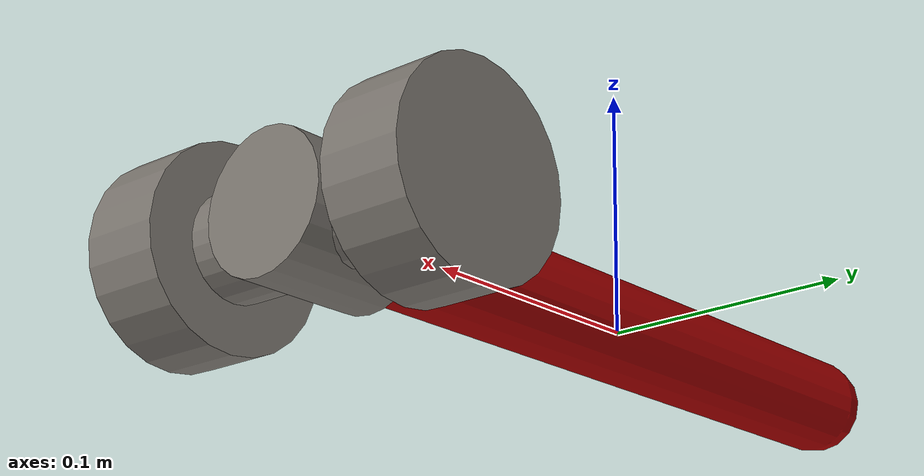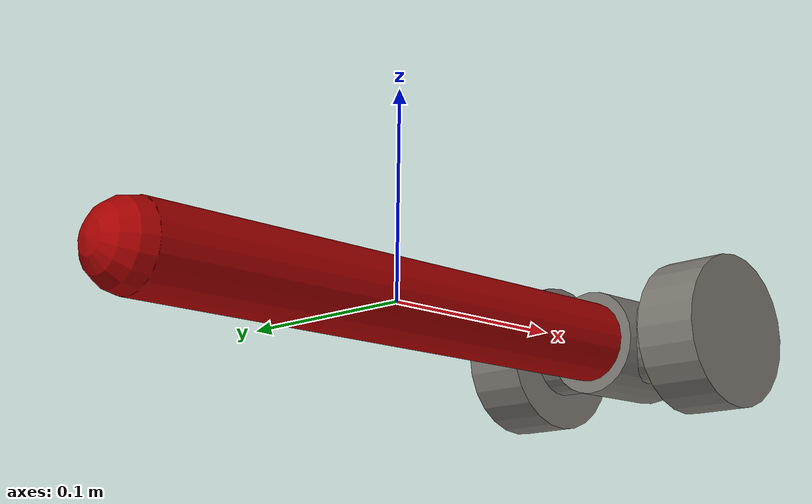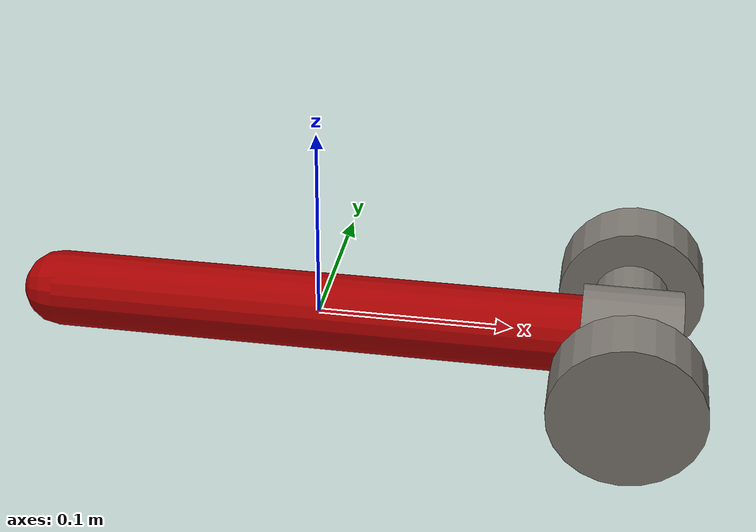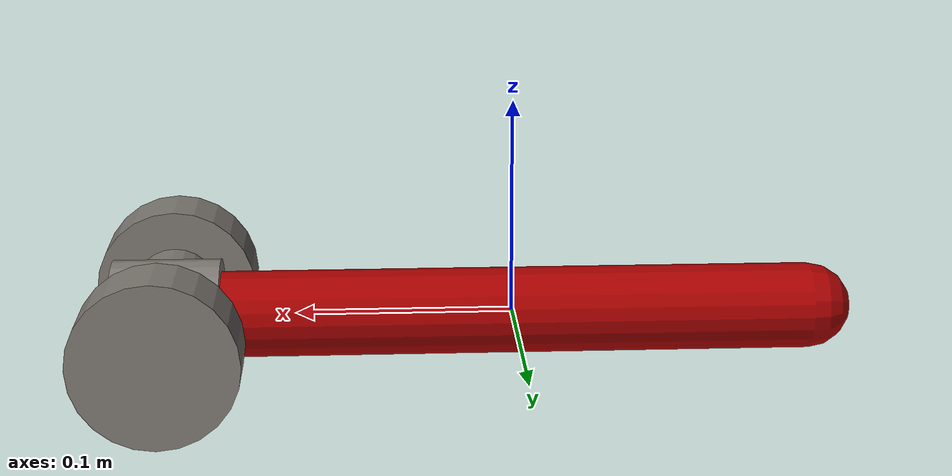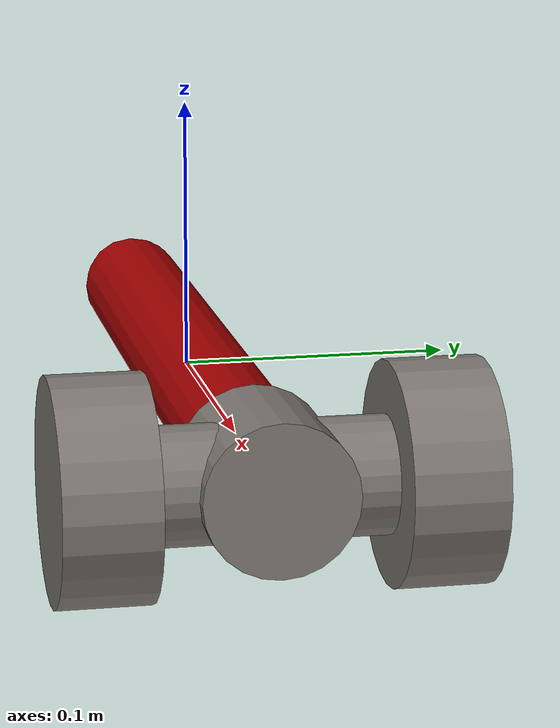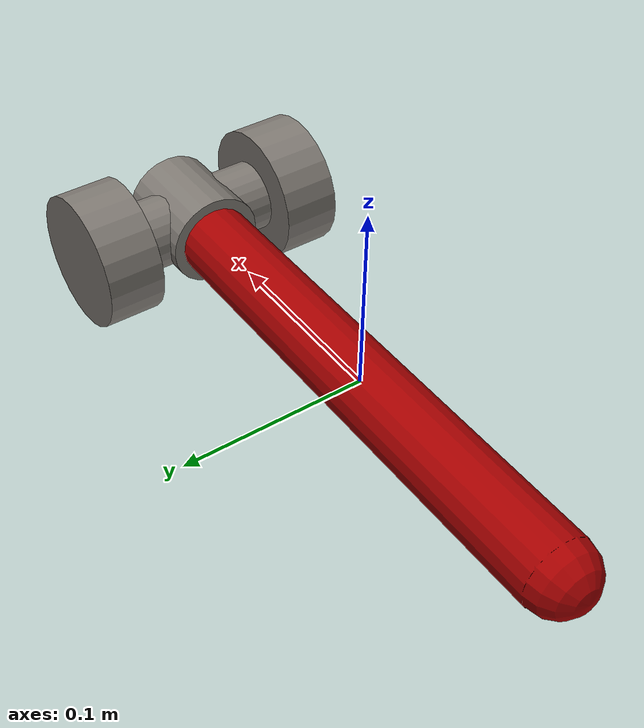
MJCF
<mujoco>
    <compiler angle="radian" inertiafromgeom="auto" inertiagrouprange="4 5"/>
    <asset>
        <texture name="T_hmr_met" type="cube" file="../textures/metal1.png"/>
        <texture name="T_hmr_wood" type="cube" file="../textures/wood1.png"/>

        <material name="hmr_col" rgba="0.3 0.3 1.0 0.5" shininess="0" specular="0"/>
        <material name="hmr_red" rgba=".65 0 0 1" shininess="1" reflectance=".7" specular=".5"/>
        <material name="hmr_metal" texture="T_hmr_met" rgba=".65 .65 .65 1" shininess="1" reflectance=".7" specular=".5"/>
        <material name="hmr_wood" texture="T_hmr_wood" shininess="1" reflectance=".7" specular=".5"/>

        <mesh file="../objects/meshes/hammer/hammerblock.stl" name="hammerblock"/>
        <mesh file="../objects/meshes/hammer/nail.stl" name="nail"/>
        <mesh file="../objects/meshes/hammer/hammerhandle.stl" name="hammerhandle"/>

    </asset>

    <default>

      <default class="hmr_base">
          <joint armature="0.001" damping="2" limited="true"/>
          <geom conaffinity="0" contype="0" group="1" type="mesh"/>
          <position ctrllimited="true" ctrlrange="0 1.57"/>
          <default class="hmr_viz">
              <geom condim="4" type="mesh"/>
          </default>
          <default class="hmr_col">
              <geom conaffinity="1" condim="3" contype="1" group="4" material="hmr_col" solimp="0.99 0.99 0.01" solref="0.01 1"/>
          </default>
      </default>
    </default>

    <worldbody>
        <body name="hammerbody" pos="0 0 0">
            <freejoint/>
            <body childclass="hmr_base" name="hammer">
                <geom material="hmr_red" euler="0 1.57 0" size="0.02 0.14" type="capsule" name="HammerHandle"/>
                <geom material="hmr_metal" euler="0 1.57 0" pos="0.16 0 0" size="0.026 0.025" type="cylinder"/>
                <geom material="hmr_metal" euler="1.57 0 0" pos="0.16 0.026 0" size="0.02 0.015" type="cylinder"/>
                <geom material="hmr_metal" euler="1.57 0 0" pos="0.16 0.056 0" size="0.038 0.016" type="cylinder"/>
                <geom material="hmr_metal" euler="1.57 0 0" pos="0.16 -0.056 0" size="0.038 0.016" type="cylinder"/>
                <geom material="hmr_metal" euler="1.57 0 0" pos="0.16 -0.026 0" size="0.02 0.015" type="cylinder"/>

                <geom class="hmr_col" euler="0 1.57 0" size="0.02 0.14" type="capsule" mass=".1"/>
                <geom class="hmr_col" euler="0 1.57 0" pos="0.16 0 0.0" size="0.026 0.025" type="cylinder" mass=".2"/>
                <geom class="hmr_col" euler="1.57 0 0" pos="0.16 0.026 0" size="0.02 0.015" type="cylinder" mass=".1"/>
                <geom class="hmr_col" euler="1.57 0 0" pos="0.16 0.056 0" size="0.038 0.016" type="cylinder" mass=".3"/>
                <geom class="hmr_col" euler="1.57 0 0" pos="0.16 -0.056 0.0" size="0.038 0.016" type="cylinder" mass=".3"/>
                <geom class="hmr_col" euler="1.57 0 0" pos="0.16 -0.026 0.0" size="0.02 0.015" type="cylinder" mass=".1"/>
            </body>
        </body>
    </worldbody>
</mujoco>
